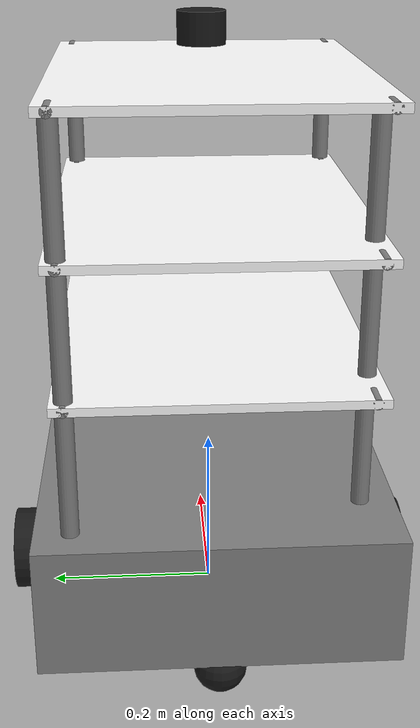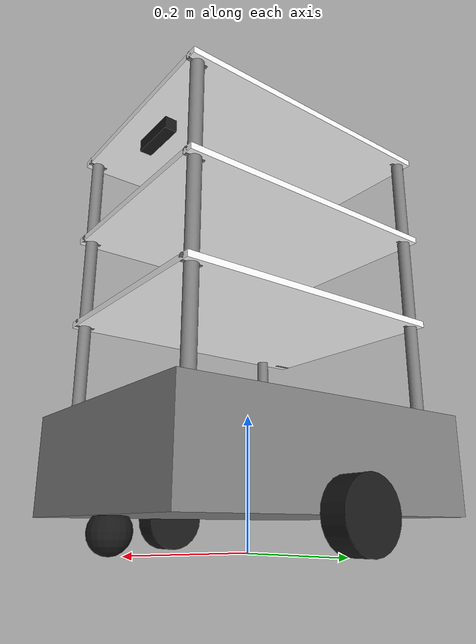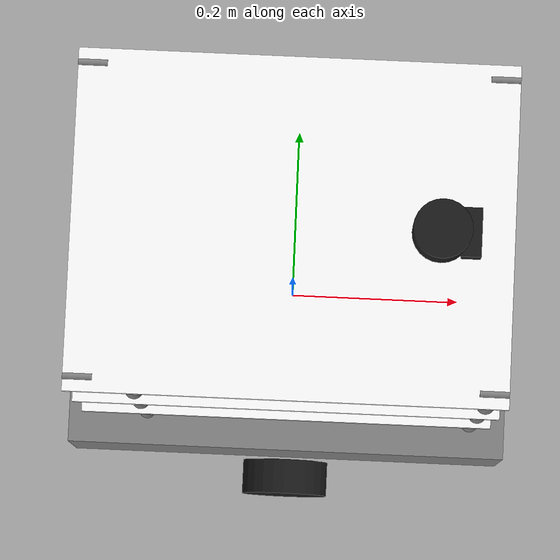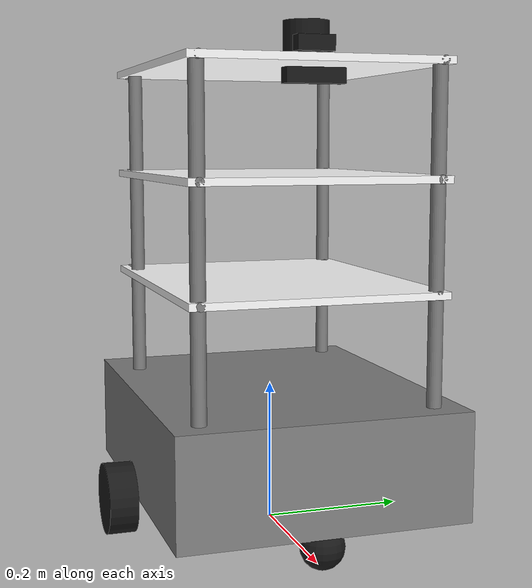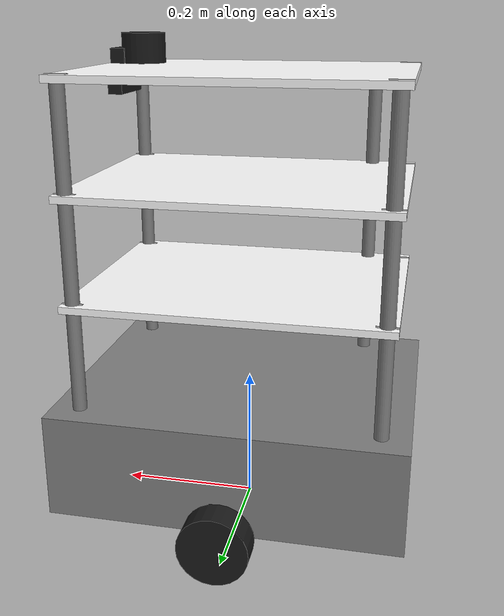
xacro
<?xml version="1.0"?>
<robot name="restaurant_bot" xmlns:xacro="http://www.ros.org/wiki/xacro">

  <!-- ================= PROPERTIES ================= -->
  <xacro:property name="chassis_length" value="0.5"/>
  <xacro:property name="chassis_width"  value="0.4"/>
  <xacro:property name="chassis_height" value="0.15"/>

  <xacro:property name="wheel_radius" value="0.05"/>
  <xacro:property name="wheel_width" value="0.04"/>
  <xacro:property name="wheel_separation" value="0.45"/>

  <xacro:property name="caster_radius" value="0.03"/>

  <xacro:property name="tray_length" value="0.45"/>
  <xacro:property name="tray_width" value="0.35"/>
  <xacro:property name="tray_height" value="0.01"/>
  <xacro:property name="tray_gap" value="0.15"/>

  <!-- NEW -->
  <xacro:property name="rod_radius" value="0.01"/>
  <xacro:property name="rod_height" value="${3*tray_gap}"/>

  <xacro:include filename="$(find restaurant_bot)/urdf/restaurant_bot.gazebo.xacro"/>

  <material name="grey">
    <color rgba="0.5 0.5 0.5 1"/>
  </material>

  <material name="dark">
    <color rgba="0.1 0.1 0.1 1"/>
  </material>

  <material name="white">
    <color rgba="1 1 1 1"/>
  </material>

  <!-- ================= BASE ================= -->

  <link name="base_footprint"/>

  <joint name="base_joint" type="fixed">
    <parent link="base_footprint"/>
    <child link="base_link"/>
    <origin xyz="0 0 ${wheel_radius}" rpy="0 0 0"/>
  </joint>

  <link name="base_link">

    <visual>
      <origin xyz="0 0 ${chassis_height/2}" rpy="0 0 0"/>
      <geometry>
        <box size="${chassis_length} ${chassis_width} ${chassis_height}"/>
      </geometry>
      <material name="grey"/>
    </visual>

    <collision>
      <origin xyz="0 0 ${chassis_height/2}" rpy="0 0 0"/>
      <geometry>
        <box size="${chassis_length} ${chassis_width} ${chassis_height}"/>
      </geometry>
    </collision>

    <inertial>
      <origin xyz="0 0 ${chassis_height/2}"/>
      <mass value="15.0"/>
      <inertia
        ixx="0.30"
        ixy="0"
        ixz="0"
        iyy="0.40"
        iyz="0"
        izz="0.40"/>
    </inertial>

  </link>

  <!-- ================= DRIVEN WHEELS ================= -->

  <xacro:macro name="wheel" params="prefix reflect_y">

    <link name="${prefix}_wheel_link">

      <visual>
        <origin xyz="0 0 0" rpy="1.5708 0 0"/>
        <geometry>
          <cylinder radius="${wheel_radius}" length="${wheel_width}"/>
        </geometry>
        <material name="dark"/>
      </visual>

      <collision>
        <origin xyz="0 0 0" rpy="1.5708 0 0"/>
        <geometry>
          <cylinder radius="${wheel_radius}" length="${wheel_width}"/>
        </geometry>
      </collision>

      <inertial>
        <mass value="1.0"/>
        <inertia
          ixx="0.001"
          ixy="0"
          ixz="0"
          iyy="0.001"
          iyz="0"
          izz="0.001"/>
      </inertial>

    </link>

    <joint name="${prefix}_wheel_joint" type="continuous">
      <parent link="base_link"/>
      <child link="${prefix}_wheel_link"/>
      <origin xyz="0 ${reflect_y*wheel_separation/2} 0" rpy="0 0 0"/>
      <axis xyz="0 1 0"/>
      <dynamics damping="0.1" friction="0.0"/>
    </joint>

  </xacro:macro>

  <xacro:wheel prefix="left" reflect_y="1"/>
  <xacro:wheel prefix="right" reflect_y="-1"/>

  <!-- ================= CASTERS ================= -->

  <xacro:macro name="caster" params="prefix x_pos">

    <link name="${prefix}_caster_link">

      <visual>
        <geometry>
          <sphere radius="${caster_radius}"/>
        </geometry>
        <material name="dark"/>
      </visual>

      <collision>
        <geometry>
          <sphere radius="${caster_radius}"/>
        </geometry>
      </collision>

      <inertial>
        <mass value="0.3"/>
        <inertia
          ixx="0.0001"
          ixy="0"
          ixz="0"
          iyy="0.0001"
          iyz="0"
          izz="0.0001"/>
      </inertial>

    </link>

    <joint name="${prefix}_caster_joint" type="fixed">
      <parent link="base_link"/>
      <child link="${prefix}_caster_link"/>
      <origin xyz="${x_pos} 0 -${wheel_radius-caster_radius}" rpy="0 0 0"/>
    </joint>

  </xacro:macro>

  <xacro:caster prefix="front" x_pos="0.22"/>
  <xacro:caster prefix="rear" x_pos="-0.22"/>

  <!-- ================= SUPPORT RODS ================= -->

  <xacro:macro name="support_rod" params="name x y">

    <link name="${name}_rod_link">

      <visual>
        <origin xyz="0 0 ${rod_height/2}" rpy="0 0 0"/>
        <geometry>
          <cylinder radius="${rod_radius}" length="${rod_height}"/>
        </geometry>
        <material name="grey"/>
      </visual>

      <collision>
        <origin xyz="0 0 ${rod_height/2}" rpy="0 0 0"/>
        <geometry>
          <cylinder radius="${rod_radius}" length="${rod_height}"/>
        </geometry>
      </collision>

      <inertial>
        <origin xyz="0 0 ${rod_height/2}"/>
        <mass value="0.2"/>
        <inertia
          ixx="0.0002"
          ixy="0"
          ixz="0"
          iyy="0.0002"
          iyz="0"
          izz="0.0002"/>
      </inertial>

    </link>

    <joint name="${name}_rod_joint" type="fixed">
      <parent link="base_link"/>
      <child link="${name}_rod_link"/>
      <origin xyz="${x} ${y} ${chassis_height}" rpy="0 0 0"/>
    </joint>

  </xacro:macro>

  <xacro:support_rod
      name="front_left"
      x="${chassis_length/2 - 0.04}"
      y="${chassis_width/2 - 0.04}"/>

  <xacro:support_rod
      name="front_right"
      x="${chassis_length/2 - 0.04}"
      y="${-chassis_width/2 + 0.04}"/>

  <xacro:support_rod
      name="rear_left"
      x="${-chassis_length/2 + 0.04}"
      y="${chassis_width/2 - 0.04}"/>

  <xacro:support_rod
      name="rear_right"
      x="${-chassis_width/2 + 0.04}"
      y="${-chassis_width/2 + 0.04}"/>

  <!-- ================= TRAYS (x3) ================= -->

  <xacro:macro name="tray" params="index z_height">

    <link name="tray_${index}_link">

      <visual>
        <origin xyz="0 0 0" rpy="0 0 0"/>
        <geometry>
          <box size="${tray_length} ${tray_width} ${tray_height}"/>
        </geometry>
        <material name="white"/>
      </visual>

      <collision>
        <origin xyz="0 0 0" rpy="0 0 0"/>
        <geometry>
          <box size="${tray_length} ${tray_width} ${tray_height}"/>
        </geometry>
      </collision>

      <inertial>
        <mass value="0.5"/>
        <inertia
            ixx="0.001"
            ixy="0"
            ixz="0"
            iyy="0.001"
            iyz="0"
            izz="0.001"/>
      </inertial>

    </link>

    <joint name="tray_${index}_joint" type="fixed">
      <parent link="base_link"/>
      <child link="tray_${index}_link"/>
      <origin xyz="0 0 ${z_height}" rpy="0 0 0"/>
    </joint>

  </xacro:macro>

  <!-- Tray 1 -->
  <xacro:tray
      index="1"
      z_height="${chassis_height + tray_gap}"/>

  <!-- Tray 2 -->
  <xacro:tray
      index="2"
      z_height="${chassis_height + 2*tray_gap}"/>

  <!-- Tray 3 -->
  <xacro:tray
      index="3"
      z_height="${chassis_height + 3*tray_gap}"/>

  <!-- ================= LIDAR ================= -->

  <link name="lidar_link">

    <visual>
      <geometry>
        <cylinder radius="0.03" length="0.04"/>
      </geometry>
      <material name="dark"/>
    </visual>

    <collision>
      <geometry>
        <cylinder radius="0.03" length="0.04"/>
      </geometry>
    </collision>

    <inertial>
      <mass value="0.1"/>
      <inertia
        ixx="0.0001"
        ixy="0"
        ixz="0"
        iyy="0.0001"
        iyz="0"
        izz="0.0001"/>
    </inertial>

  </link>

  <!-- FIXED TO TOP TRAY -->
  <joint name="lidar_joint" type="fixed">
    <parent link="tray_3_link"/>
    <child link="lidar_link"/>
    <origin xyz="0.15 0 0.03" rpy="0 0 0"/>
  </joint>

  <!-- ================= RGB CAMERA ================= -->

  <link name="camera_link">

    <visual>
      <geometry>
        <box size="0.02 0.05 0.02"/>
      </geometry>
      <material name="dark"/>
    </visual>

    <collision>
      <geometry>
        <box size="0.02 0.05 0.02"/>
      </geometry>
    </collision>

    <inertial>
      <mass value="0.05"/>
      <inertia
        ixx="0.00005"
        ixy="0"
        ixz="0"
        iyy="0.00005"
        iyz="0"
        izz="0.00005"/>
    </inertial>

  </link>

  <!-- CAMERA MOUNTED ON TOP TRAY -->
  <joint name="camera_joint" type="fixed">
    <parent link="tray_3_link"/>
    <child link="camera_link"/>
    <origin xyz="0.18 0 0.02" rpy="0 0 0"/>
  </joint>

  <!-- ================= DEPTH CAMERA ================= -->

  <link name="depth_camera_link">

    <visual>
      <geometry>
        <box size="0.02 0.08 0.02"/>
      </geometry>
      <material name="dark"/>
    </visual>

    <collision>
      <geometry>
        <box size="0.02 0.08 0.02"/>
      </geometry>
    </collision>

    <inertial>
      <mass value="0.05"/>
      <inertia
        ixx="0.00005"
        ixy="0"
        ixz="0"
        iyy="0.00005"
        iyz="0"
        izz="0.00005"/>
    </inertial>

  </link>

  <!-- DEPTH CAMERA MOUNTED ON TOP TRAY -->
  <joint name="depth_camera_joint" type="fixed">
    <parent link="tray_3_link"/>
    <child link="depth_camera_link"/>
    <origin xyz="0.18 0 -0.02" rpy="0 0 0"/>
  </joint>

    <!-- ================= TRAY SUPPORT BRACKETS ================= -->

  <xacro:macro name="tray_bracket" params="name parent x y">

    <link name="${name}_link">

      <visual>
        <origin xyz="0 0 0" rpy="0 1.5708 0"/>
        <geometry>
          <cylinder radius="0.006" length="0.03"/>
        </geometry>
        <material name="grey"/>
      </visual>

      <collision>
        <origin xyz="0 0 0" rpy="0 1.5708 0"/>
        <geometry>
          <cylinder radius="0.006" length="0.03"/>
        </geometry>
      </collision>

      <inertial>
        <mass value="0.05"/>
        <inertia
          ixx="0.00001"
          ixy="0"
          ixz="0"
          iyy="0.00001"
          iyz="0"
          izz="0.00001"/>
      </inertial>

    </link>

    <joint name="${name}_joint" type="fixed">
      <parent link="${parent}"/>
      <child link="${name}_link"/>
      <origin xyz="${x} ${y} 0" rpy="0 0 0"/>
    </joint>

  </xacro:macro>

  <!-- Tray 1 Brackets -->

  <xacro:tray_bracket
      name="tray1_fl"
      parent="tray_1_link"
      x="0.21"
      y="0.16"/>

  <xacro:tray_bracket
      name="tray1_fr"
      parent="tray_1_link"
      x="0.21"
      y="-0.16"/>

  <xacro:tray_bracket
      name="tray1_rl"
      parent="tray_1_link"
      x="-0.21"
      y="0.16"/>

  <xacro:tray_bracket
      name="tray1_rr"
      parent="tray_1_link"
      x="-0.21"
      y="-0.16"/>

  <!-- Tray 2 Brackets -->

  <xacro:tray_bracket
      name="tray2_fl"
      parent="tray_2_link"
      x="0.21"
      y="0.16"/>

  <xacro:tray_bracket
      name="tray2_fr"
      parent="tray_2_link"
      x="0.21"
      y="-0.16"/>

  <xacro:tray_bracket
      name="tray2_rl"
      parent="tray_2_link"
      x="-0.21"
      y="0.16"/>

  <xacro:tray_bracket
      name="tray2_rr"
      parent="tray_2_link"
      x="-0.21"
      y="-0.16"/>

  <!-- Tray 3 Brackets -->

  <xacro:tray_bracket
      name="tray3_fl"
      parent="tray_3_link"
      x="0.21"
      y="0.16"/>

  <xacro:tray_bracket
      name="tray3_fr"
      parent="tray_3_link"
      x="0.21"
      y="-0.16"/>

  <xacro:tray_bracket
      name="tray3_rl"
      parent="tray_3_link"
      x="-0.21"
      y="0.16"/>

  <xacro:tray_bracket
      name="tray3_rr"
      parent="tray_3_link"
      x="-0.21"
      y="-0.16"/>

     <!-- ================= ros2_control ================= -->

  <ros2_control name="GazeboSystem" type="system">

    <hardware>
      <plugin>gazebo_ros2_control/GazeboSystem</plugin>
    </hardware>

    <joint name="left_wheel_joint">
      <command_interface name="velocity"/>
      <state_interface name="velocity"/>
      <state_interface name="position"/>
    </joint>

    <joint name="right_wheel_joint">
      <command_interface name="velocity"/>
      <state_interface name="velocity"/>
      <state_interface name="position"/>
    </joint>

  </ros2_control>

</robot>
